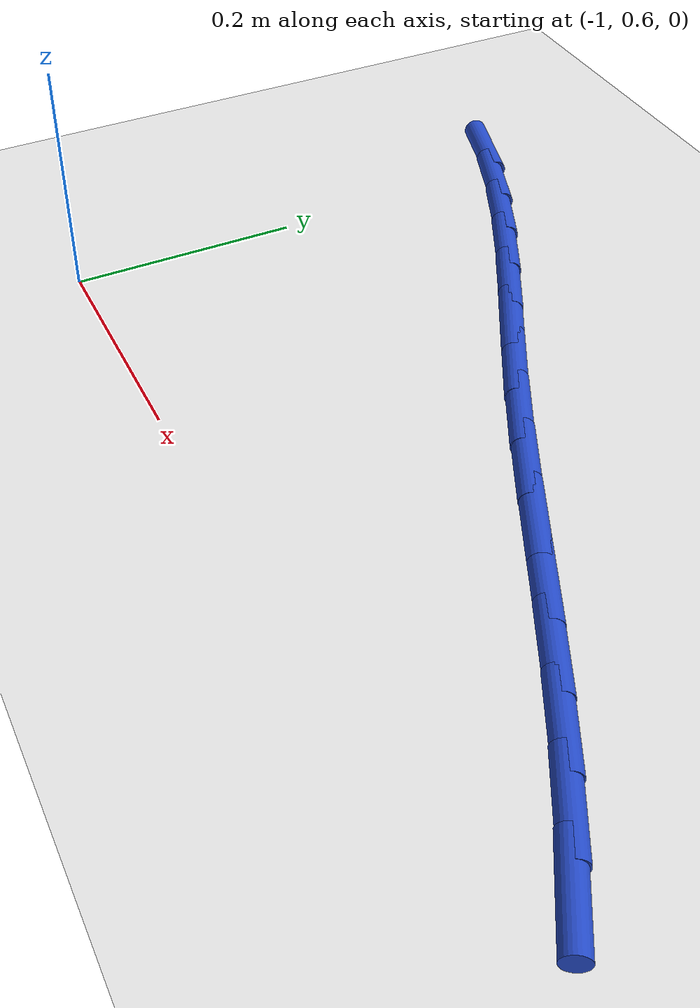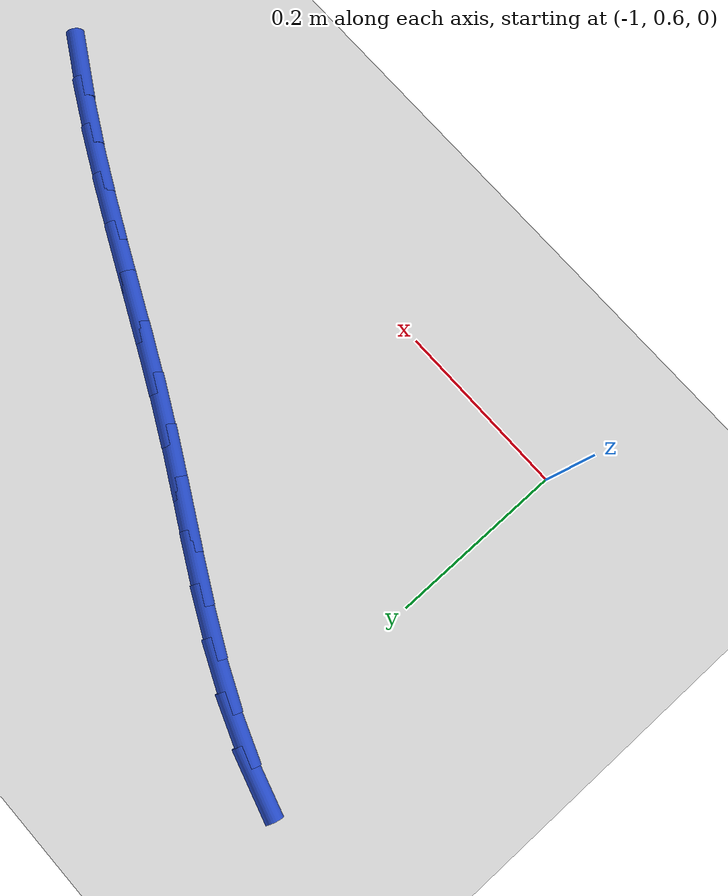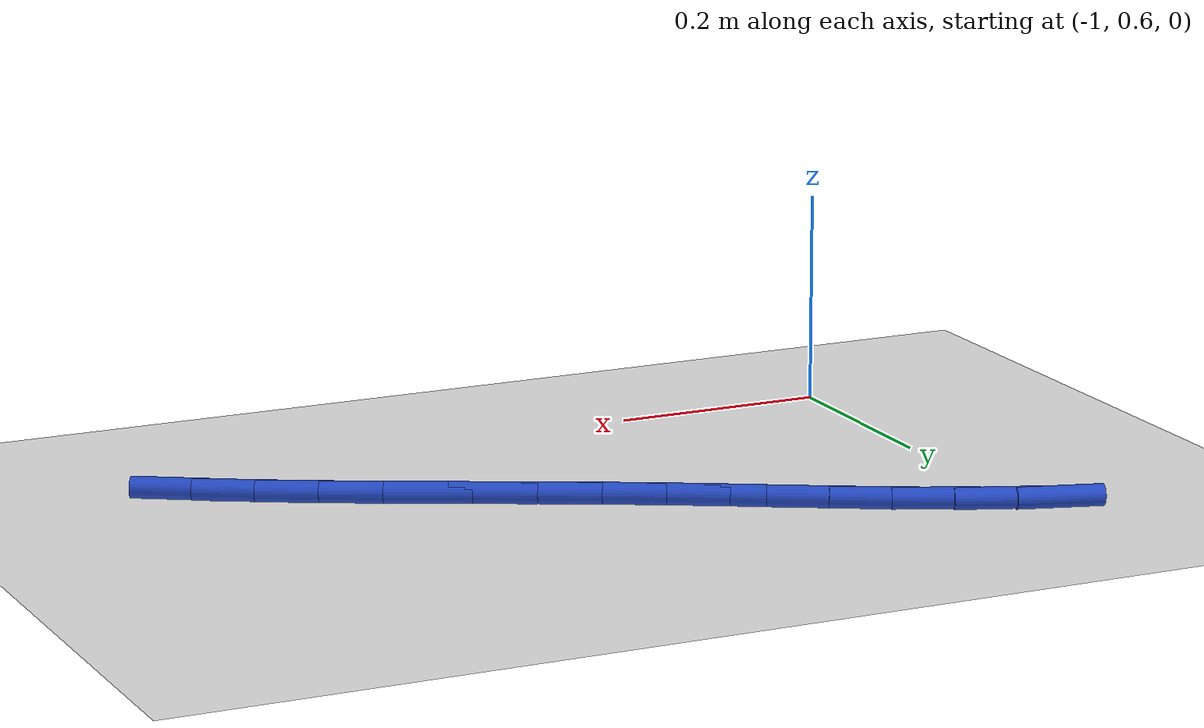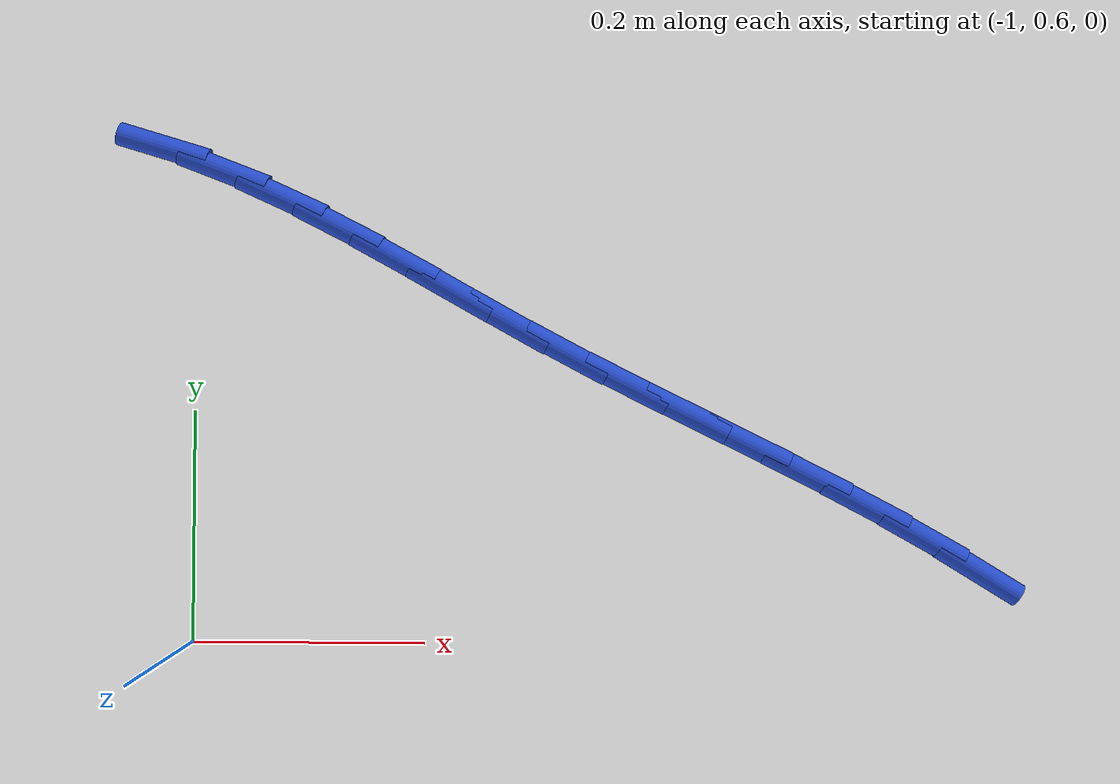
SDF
<sdf version="1.6">
 <world name="default">
  <model name="ground_plane">
   <static>1</static>
   <link name="link">
    <collision name="collision">
     <geometry><plane><normal>0 0 1</normal><size>100 100</size></plane></geometry>
     <surface><friction><ode><mu>100</mu><mu2>50</mu2></ode></friction></surface>
    </collision>
    <visual name="visual">
     <cast_shadows>0</cast_shadows>
     <geometry><plane><normal>0 0 1</normal><size>100 100</size></plane></geometry>
     <material>
      <script><uri>file://media/materials/scripts/gazebo.material</uri><name>Gazebo/WhiteGlow</name></script>
     </material>
    </visual>
   </link>
  </model>
  <model name="line">
   <link name="link_14">
    <pose>-0.32284648786155834 0.667637179052044 0.01 0 1.57 -0.5438819191600993</pose>
    <collision name="collision">
     <geometry><cylinder><radius>0.01</radius><length>0.08</length></cylinder></geometry>
    </collision>
    <visual name="visual">
     <material>
      <script><name>Gazebo/Blue</name><uri>file://media/materials/scripts/gazebo.material</uri></script>
     </material>
     <geometry><cylinder><radius>0.01</radius><length>0.08</length></cylinder></geometry>
    </visual>
   </link>
   <link name="link_15">
    <pose>-0.37083536720443305 0.6966569523316997 0.01 0 1.57 -0.5056245760643079</pose>
    <collision name="collision">
     <geometry><cylinder><radius>0.01</radius><length>0.08</length></cylinder></geometry>
    </collision>
    <visual name="visual">
     <material>
      <script><name>Gazebo/Blue</name><uri>file://media/materials/scripts/gazebo.material</uri></script>
     </material>
     <geometry><cylinder><radius>0.01</radius><length>0.08</length></cylinder></geometry>
    </visual>
   </link>
   <link name="link_16">
    <pose>-0.42051950466901056 0.724163496288159 0.01 0 1.57 -0.47794314096298224</pose>
    <collision name="collision">
     <geometry><cylinder><radius>0.01</radius><length>0.08</length></cylinder></geometry>
    </collision>
    <visual name="visual">
     <material>
      <script><name>Gazebo/Blue</name><uri>file://media/materials/scripts/gazebo.material</uri></script>
     </material>
     <geometry><cylinder><radius>0.01</radius><length>0.08</length></cylinder></geometry>
    </visual>
   </link>
   <link name="link_17">
    <pose>-0.4714469891935097 0.7505438974112317 0.01 0 1.57 -0.4602680610118793</pose>
    <collision name="collision">
     <geometry><cylinder><radius>0.01</radius><length>0.08</length></cylinder></geometry>
    </collision>
    <visual name="visual">
     <material>
      <script><name>Gazebo/Blue</name><uri>file://media/materials/scripts/gazebo.material</uri></script>
     </material>
     <geometry><cylinder><radius>0.01</radius><length>0.08</length></cylinder></geometry>
    </visual>
   </link>
   <link name="link_18">
    <pose>-0.5231659097161496 0.7761852421907272 0.01 0 1.57 -0.45221360992812815</pose>
    <collision name="collision">
     <geometry><cylinder><radius>0.01</radius><length>0.08</length></cylinder></geometry>
    </collision>
    <visual name="visual">
     <material>
      <script><name>Gazebo/Blue</name><uri>file://media/materials/scripts/gazebo.material</uri></script>
     </material>
     <geometry><cylinder><radius>0.01</radius><length>0.08</length></cylinder></geometry>
    </visual>
   </link>
   <link name="link_19">
    <pose>-0.5752243551751488 0.8014746171164544 0.01 0 1.57 -0.45360994708340147</pose>
    <collision name="collision">
     <geometry><cylinder><radius>0.01</radius><length>0.08</length></cylinder></geometry>
    </collision>
    <visual name="visual">
     <material>
      <script><name>Gazebo/Blue</name><uri>file://media/materials/scripts/gazebo.material</uri></script>
     </material>
     <geometry><cylinder><radius>0.01</radius><length>0.08</length></cylinder></geometry>
    </visual>
   </link>
   <link name="link_20">
    <pose>-0.6271704145087265 0.8267991086782234 0.01 0 1.57 -0.46451623409284337</pose>
    <collision name="collision">
     <geometry><cylinder><radius>0.01</radius><length>0.08</length></cylinder></geometry>
    </collision>
    <visual name="visual">
     <material>
      <script><name>Gazebo/Blue</name><uri>file://media/materials/scripts/gazebo.material</uri></script>
     </material>
     <geometry><cylinder><radius>0.01</radius><length>0.08</length></cylinder></geometry>
    </visual>
   </link>
   <link name="link_21">
    <pose>-0.678552176655101 0.8525458033658427 0.01 0 1.57 -0.48490561787358794</pose>
    <collision name="collision">
     <geometry><cylinder><radius>0.01</radius><length>0.08</length></cylinder></geometry>
    </collision>
    <visual name="visual">
     <material>
      <script><name>Gazebo/Blue</name><uri>file://media/materials/scripts/gazebo.material</uri></script>
     </material>
     <geometry><cylinder><radius>0.01</radius><length>0.08</length></cylinder></geometry>
    </visual>
   </link>
   <link name="link_22">
    <pose>-0.7289297099330747 0.8790878150656319 0.01 0 1.57 -0.5041413805983814</pose>
    <collision name="collision">
     <geometry><cylinder><radius>0.01</radius><length>0.08</length></cylinder></geometry>
    </collision>
    <visual name="visual">
     <material>
      <script><name>Gazebo/Blue</name><uri>file://media/materials/scripts/gazebo.material</uri></script>
     </material>
     <geometry><cylinder><radius>0.01</radius><length>0.08</length></cylinder></geometry>
    </visual>
   </link>
   <link name="link_23">
    <pose>-0.7782788308831791 0.9063133340058047 0.01 0 1.57 -0.5083930693491994</pose>
    <collision name="collision">
     <geometry><cylinder><radius>0.01</radius><length>0.08</length></cylinder></geometry>
    </collision>
    <visual name="visual">
     <material>
      <script><name>Gazebo/Blue</name><uri>file://media/materials/scripts/gazebo.material</uri></script>
     </material>
     <geometry><cylinder><radius>0.01</radius><length>0.08</length></cylinder></geometry>
    </visual>
   </link>
   <link name="link_24">
    <pose>-0.8270881864871208 0.9335123912390825 0.01 0 1.57 -0.4963883720028272</pose>
    <collision name="collision">
     <geometry><cylinder><radius>0.01</radius><length>0.08</length></cylinder></geometry>
    </collision>
    <visual name="visual">
     <material>
      <script><name>Gazebo/Blue</name><uri>file://media/materials/scripts/gazebo.material</uri></script>
     </material>
     <geometry><cylinder><radius>0.01</radius><length>0.08</length></cylinder></geometry>
    </visual>
   </link>
   <link name="link_25">
    <pose>-0.875878088020422 0.9599380849718485 0.01 0 1.57 -0.4678593502495238</pose>
    <collision name="collision">
     <geometry><cylinder><radius>0.01</radius><length>0.08</length></cylinder></geometry>
    </collision>
    <visual name="visual">
     <material>
      <script><name>Gazebo/Blue</name><uri>file://media/materials/scripts/gazebo.material</uri></script>
     </material>
     <geometry><cylinder><radius>0.01</radius><length>0.08</length></cylinder></geometry>
    </visual>
   </link>
   <link name="link_26">
    <pose>-0.925168846758606 0.9848435134104863 0.01 0 1.57 -0.4228191174182488</pose>
    <collision name="collision">
     <geometry><cylinder><radius>0.01</radius><length>0.08</length></cylinder></geometry>
    </collision>
    <visual name="visual">
     <material>
      <script><name>Gazebo/Blue</name><uri>file://media/materials/scripts/gazebo.material</uri></script>
     </material>
     <geometry><cylinder><radius>0.01</radius><length>0.08</length></cylinder></geometry>
    </visual>
   </link>
   <link name="link_27">
    <pose>-0.9754807739771956 1.0074817747613793 0.01 0 1.57 -0.36179645655553055</pose>
    <collision name="collision">
     <geometry><cylinder><radius>0.01</radius><length>0.08</length></cylinder></geometry>
    </collision>
    <visual name="visual">
     <material>
      <script><name>Gazebo/Blue</name><uri>file://media/materials/scripts/gazebo.material</uri></script>
     </material>
     <geometry><cylinder><radius>0.01</radius><length>0.08</length></cylinder></geometry>
    </visual>
   </link>
   <link name="link_28">
    <pose>-1.027334180951713 1.0271059672309102 0.01 0 1.57 -0.2865118723155168</pose>
    <collision name="collision">
     <geometry><cylinder><radius>0.01</radius><length>0.08</length></cylinder></geometry>
    </collision>
    <visual name="visual">
     <material>
      <script><name>Gazebo/Blue</name><uri>file://media/materials/scripts/gazebo.material</uri></script>
     </material>
     <geometry><cylinder><radius>0.01</radius><length>0.08</length></cylinder></geometry>
    </visual>
   </link>
  </model>
 </world>
</sdf>
